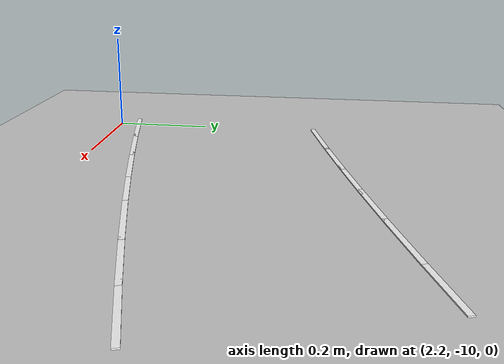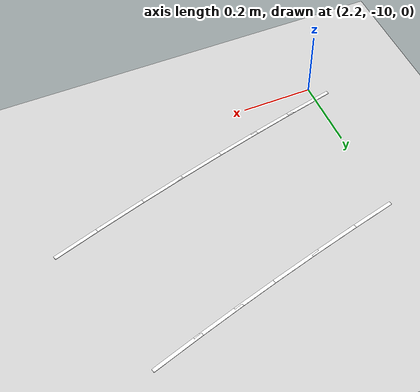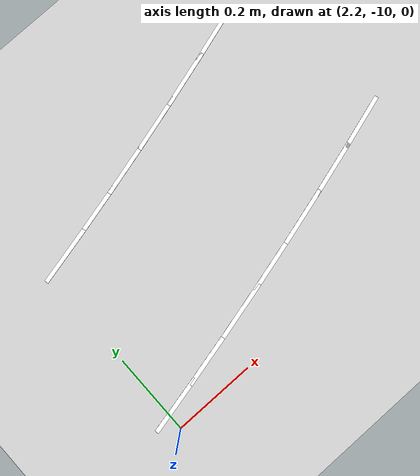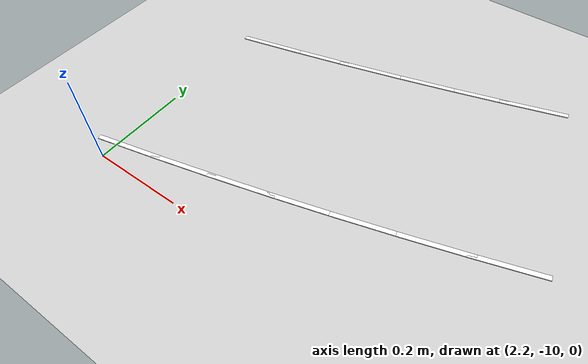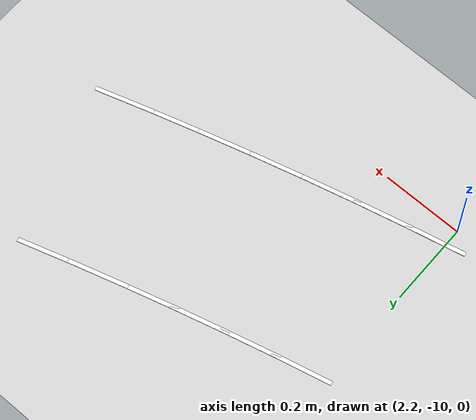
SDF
<sdf version="1.7">
 <world name="default">
  <model name="ground_plane">
   <static>1</static>
   <link name="link">
    <collision name="collision">
     <geometry><plane><normal>0 0 1</normal><size>100 100</size></plane></geometry>
     <surface>
      <contact><collide_bitmask>65535</collide_bitmask></contact>
      <friction><ode><mu>100</mu><mu2>50</mu2></ode></friction>
     </surface>
    </collision>
    <visual name="visual">
     <cast_shadows>0</cast_shadows>
     <geometry><plane><normal>0 0 1</normal><size>100 100</size></plane></geometry>
     <material>
      <script><uri>file://media/materials/scripts/gazebo.material</uri><name>Gazebo/Grey</name></script>
     </material>
    </visual>
   </link>
  </model>
  <model name="lane_line_right_392">
   <static>1</static>
   <link name="link">
    <pose>0 0 -0.004 0 -0 0</pose>
    <visual name="visual">
     <geometry><box><size>0.1457 0.01 0.01</size></box></geometry>
     <material><ambient>1 1 1 1</ambient><diffuse>1 1 1 1</diffuse></material>
    </visual>
    <collision name="collision"><geometry><box><size>0.1457 0.01 0.01</size></box></geometry></collision>
   </link>
   <pose>2.22502 -9.95416 0 0 -0 0.219911</pose>
  </model>
  <model name="lane_line_left_393">
   <static>1</static>
   <link name="link">
    <pose>0 0 -0.004 0 -0 0</pose>
    <visual name="visual">
     <geometry><box><size>0.1457 0.01 0.01</size></box></geometry>
     <material><ambient>1 1 1 1</ambient><diffuse>1 1 1 1</diffuse></material>
    </visual>
    <collision name="collision"><geometry><box><size>0.1457 0.01 0.01</size></box></geometry></collision>
   </link>
   <pose>2.25777 -9.53617 0 0 -0 0.232478</pose>
  </model>
  <model name="lane_line_right_393">
   <static>1</static>
   <link name="link">
    <pose>0 0 -0.004 0 -0 0</pose>
    <visual name="visual">
     <geometry><box><size>0.1457 0.01 0.01</size></box></geometry>
     <material><ambient>1 1 1 1</ambient><diffuse>1 1 1 1</diffuse></material>
    </visual>
    <collision name="collision"><geometry><box><size>0.1457 0.01 0.01</size></box></geometry></collision>
   </link>
   <pose>2.34993 -9.92541 0 0 -0 0.232478</pose>
  </model>
  <model name="lane_line_left_394">
   <static>1</static>
   <link name="link">
    <pose>0 0 -0.004 0 -0 0</pose>
    <visual name="visual">
     <geometry><box><size>0.1457 0.01 0.01</size></box></geometry>
     <material><ambient>1 1 1 1</ambient><diffuse>1 1 1 1</diffuse></material>
    </visual>
    <collision name="collision"><geometry><box><size>0.1457 0.01 0.01</size></box></geometry></collision>
   </link>
   <pose>2.37742 -9.50705 0 0 -0 0.245044</pose>
  </model>
  <model name="lane_line_right_394">
   <static>1</static>
   <link name="link">
    <pose>0 0 -0.004 0 -0 0</pose>
    <visual name="visual">
     <geometry><box><size>0.1457 0.01 0.01</size></box></geometry>
     <material><ambient>1 1 1 1</ambient><diffuse>1 1 1 1</diffuse></material>
    </visual>
    <collision name="collision"><geometry><box><size>0.1457 0.01 0.01</size></box></geometry></collision>
   </link>
   <pose>2.47446 -9.8951 0 0 -0 0.245044</pose>
  </model>
  <model name="lane_line_left_395">
   <static>1</static>
   <link name="link">
    <pose>0 0 -0.004 0 -0 0</pose>
    <visual name="visual">
     <geometry><box><size>0.1457 0.01 0.01</size></box></geometry>
     <material><ambient>1 1 1 1</ambient><diffuse>1 1 1 1</diffuse></material>
    </visual>
    <collision name="collision"><geometry><box><size>0.1457 0.01 0.01</size></box></geometry></collision>
   </link>
   <pose>2.4967 -9.47642 0 0 -0 0.257611</pose>
  </model>
  <model name="lane_line_right_395">
   <static>1</static>
   <link name="link">
    <pose>0 0 -0.004 0 -0 0</pose>
    <visual name="visual">
     <geometry><box><size>0.1457 0.01 0.01</size></box></geometry>
     <material><ambient>1 1 1 1</ambient><diffuse>1 1 1 1</diffuse></material>
    </visual>
    <collision name="collision"><geometry><box><size>0.1457 0.01 0.01</size></box></geometry></collision>
   </link>
   <pose>2.59861 -9.86322 0 0 -0 0.257611</pose>
  </model>
  <model name="lane_line_left_396">
   <static>1</static>
   <link name="link">
    <pose>0 0 -0.004 0 -0 0</pose>
    <visual name="visual">
     <geometry><box><size>0.1457 0.01 0.01</size></box></geometry>
     <material><ambient>1 1 1 1</ambient><diffuse>1 1 1 1</diffuse></material>
    </visual>
    <collision name="collision"><geometry><box><size>0.1457 0.01 0.01</size></box></geometry></collision>
   </link>
   <pose>2.61559 -9.4443 0 0 -0 0.270177</pose>
  </model>
  <model name="lane_line_right_396">
   <static>1</static>
   <link name="link">
    <pose>0 0 -0.004 0 -0 0</pose>
    <visual name="visual">
     <geometry><box><size>0.1457 0.01 0.01</size></box></geometry>
     <material><ambient>1 1 1 1</ambient><diffuse>1 1 1 1</diffuse></material>
    </visual>
    <collision name="collision"><geometry><box><size>0.1457 0.01 0.01</size></box></geometry></collision>
   </link>
   <pose>2.72235 -9.82979 0 0 -0 0.270177</pose>
  </model>
  <model name="lane_line_left_397">
   <static>1</static>
   <link name="link">
    <pose>0 0 -0.004 0 -0 0</pose>
    <visual name="visual">
     <geometry><box><size>0.1457 0.01 0.01</size></box></geometry>
     <material><ambient>1 1 1 1</ambient><diffuse>1 1 1 1</diffuse></material>
    </visual>
    <collision name="collision"><geometry><box><size>0.1457 0.01 0.01</size></box></geometry></collision>
   </link>
   <pose>2.73406 -9.41069 0 0 -0 0.282743</pose>
  </model>
  <model name="lane_line_right_397">
   <static>1</static>
   <link name="link">
    <pose>0 0 -0.004 0 -0 0</pose>
    <visual name="visual">
     <geometry><box><size>0.1457 0.01 0.01</size></box></geometry>
     <material><ambient>1 1 1 1</ambient><diffuse>1 1 1 1</diffuse></material>
    </visual>
    <collision name="collision"><geometry><box><size>0.1457 0.01 0.01</size></box></geometry></collision>
   </link>
   <pose>2.84565 -9.79481 0 0 -0 0.282743</pose>
  </model>
  <model name="lane_line_left_398">
   <static>1</static>
   <link name="link">
    <pose>0 0 -0.004 0 -0 0</pose>
    <visual name="visual">
     <geometry><box><size>0.1457 0.01 0.01</size></box></geometry>
     <material><ambient>1 1 1 1</ambient><diffuse>1 1 1 1</diffuse></material>
    </visual>
    <collision name="collision"><geometry><box><size>0.1457 0.01 0.01</size></box></geometry></collision>
   </link>
   <pose>2.8521 -9.37559 0 0 -0 0.29531</pose>
  </model>
  <model name="lane_line_right_398">
   <static>1</static>
   <link name="link">
    <pose>0 0 -0.004 0 -0 0</pose>
    <visual name="visual">
     <geometry><box><size>0.1457 0.01 0.01</size></box></geometry>
     <material><ambient>1 1 1 1</ambient><diffuse>1 1 1 1</diffuse></material>
    </visual>
    <collision name="collision"><geometry><box><size>0.1457 0.01 0.01</size></box></geometry></collision>
   </link>
   <pose>2.96851 -9.75827 0 0 -0 0.29531</pose>
  </model>
 </world>
</sdf>
